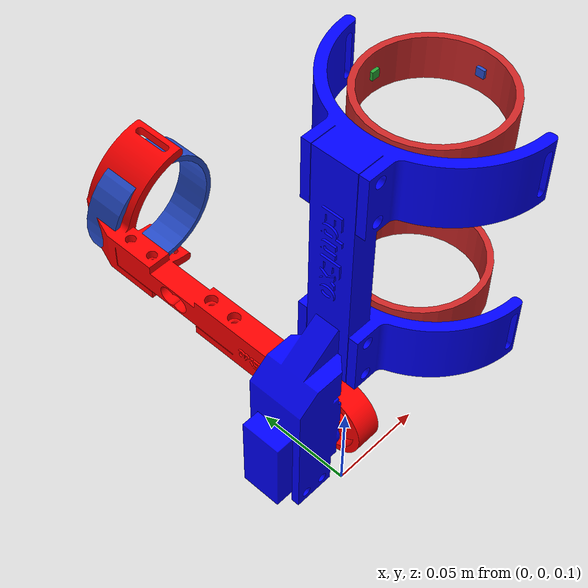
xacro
<?xml version="1.0"?>
<robot name="eduexo" xmlns:xacro="http://www.ros.org/wiki/xacro">

  <!-- Import all Gazebo-customization elements, including Gazebo colors -->
  <xacro:include filename="$(find wearable_robot_description)/urdf/eduexo_v2.gazebo"/>
  <!-- Import Rviz colors -->
  <xacro:include filename="$(find wearable_robot_description)/urdf/materials.xacro"/>

    <link name="arm_link">
      <visual>
        <geometry>
          <mesh filename="$(find wearable_robot_description)/meshes/eduexo_base_link.dae" scale="0.001 0.001 0.001"/>
        </geometry>
        <origin rpy="0 0 -1.570796" xyz="0.0 0 0.0"/>
        <material name="blue">
          <color rgba="0 0 1 1"/>
        </material>
      </visual>
      <inertial>
        <mass value="0.1"/>
        <inertia ixx="1.0" ixy="0.0" ixz="0.0" iyy="1.0" iyz="0.0" izz="1.0"/>
      </inertial>
    </link>

    <joint name="arm_joint" type="revolute">
        <parent link="arm_link"/>
        <child link="forearm_link"/>
        <origin xyz="0 0 0.1575"/>
        <axis xyz="0 0 0" />
        <limit effort="300" velocity="0.1" lower="-4.1" upper="-1.5"/>
        <dynamics damping="50" friction="1"/>
    </joint>

    <link name="forearm_link">
        <visual>
            <geometry>
                <mesh filename="$(find wearable_robot_description)/meshes/eduexo_arm_link.dae" scale="0.001 0.001 0.001"/>
            </geometry>
            <origin rpy="0 -1.570796 -1.570796" xyz="0.0 0.0 0.0"/>
            <material name="red">
                <color rgba="1 0 0 1"/>
            </material>
        </visual>
        <inertial>
            <mass value="0.1"/>
            <inertia ixx="1.0" ixy="0.0" ixz="0.0" iyy="1.0" iyz="0.0" izz="1.0"/>
        </inertial>
    </link>

    <joint name="forearm_band_link_fix_to_forearm_link" type="fixed">
      <origin xyz="0.025 0.18 0.05" rpy="0 1.570796 0"/>
      <parent link="forearm_link"/>
      <child link="forearm_band_link"/>
    </joint>

    <link name="forearm_band_link">
      <visual>
        <geometry>
          <mesh filename="$(find wearable_robot_description)/meshes/pipe.dae" scale="0.03 0.03 0.01"/>
        </geometry>
        <origin rpy="1.570796 1.570796 0" xyz="0.05 -0.025 0.0"/>
      </visual>
      <collision>
        <geometry>
          <mesh filename="$(find wearable_robot_description)/meshes/pipe.dae" scale="0.03 0.03 0.01"/>
        </geometry>
        <origin rpy="1.570796 1.570796 0" xyz="0.05 -0.025 0.0"/>
      </collision>

      <inertial>
        <mass value="0.001"/>
        <inertia ixx="1e-2" iyy="1e-2" izz="1e-2" ixy="0" ixz="0" iyz="0"/>
      </inertial>
    </link>

    <joint name="arm_band_link_to_arm_link" type="fixed">
      <origin xyz="0.05 -0.05 0.2875" rpy="0 0 1.570796"/>
      <axis xyz="0 0 0" />
      <parent link="arm_link"/>
      <child link="arm_band_link"/>
    </joint>

    <link name="arm_band_link">
      <visual>
        <geometry>
          <mesh filename="$(find wearable_robot_description)/meshes/pipe.dae" scale="0.0295 0.0295 0.01"/>
        </geometry>
        <origin rpy="0 0 0" xyz="0.05 0.01 0.02"/>
      </visual>

      <collision>
        <geometry>
          <mesh filename="$(find wearable_robot_description)/meshes/pipe.dae" scale="0.0295 0.0295 0.01"/>
        </geometry>
        <origin rpy="0 0 0" xyz="0.05 0.01 0.02"/>
      </collision>

      <visual>
        <geometry>
          <mesh filename="$(find wearable_robot_description)/meshes/pipe.dae" scale="0.0295 0.0295 0.01"/>
        </geometry>
        <origin rpy="0 0 0" xyz="0.05 0.01 -0.07"/>
      </visual>

      <collision>
        <geometry>
          <mesh filename="$(find wearable_robot_description)/meshes/pipe.dae" scale="0.0295 0.0295 0.01"/>
        </geometry>
        <origin rpy="0 0 0" xyz="0.05 0.01 -0.07"/>
      </collision>

      <inertial>
        <mass value="0.001"/>
        <inertia ixx="1e-2" iyy="1e-2" izz="1e-2" ixy="0" ixz="0" iyz="0"/>
      </inertial>
    </link>

    <!-- band point -->
    <joint name="arm_band_point_1_to_arm_link" type="fixed">
      <origin xyz="0.05 -0.05 0.2875" rpy="0 0 1.570796"/>
      <axis xyz="0 0 0" />
      <parent link="arm_link"/>
      <child link="arm_band_point_1"/>
    </joint>

    <joint name="arm_band_point_2_to_arm_link" type="fixed">
      <origin xyz="0.05 -0.05 0.2875" rpy="0 0 1.570796"/>
      <axis xyz="0 0 0" />
      <parent link="arm_link"/>
      <child link="arm_band_point_2"/>
    </joint>

    <joint name="arm_band_point_3_to_arm_link" type="fixed">
      <origin xyz="0.05 -0.05 0.2875" rpy="0 0 1.570796"/>
      <axis xyz="0 0 0" />
      <parent link="arm_link"/>
      <child link="arm_band_point_3"/>
    </joint>

    <joint name="arm_band_point_4_to_arm_link" type="fixed">
      <origin xyz="0.05 -0.05 0.2875" rpy="0 0 1.570796"/>
      <axis xyz="0 0 0" />
      <parent link="arm_link"/>
      <child link="arm_band_point_4"/>
    </joint>

    <link name="arm_band_point_1">
      <visual>
        <geometry>
          <box size="0.004 0.004 0.004" />
        </geometry>
        <origin rpy="0 0 0" xyz="0.020 0.01 0.02"/>
      </visual>
      <collision>
        <geometry>
          <box size="0.004 0.004 0.004" />
        </geometry>
        <origin rpy="0 0 0" xyz="0.020 0.01 0.02"/>
      </collision>
    </link>

    <link name="arm_band_point_2">
      <visual>
        <geometry>
          <box size="0.004 0.004 0.004" />
        </geometry>
        <origin rpy="0 0 0" xyz="0.080 0.01 0.02"/>
      </visual>
      <collision>
        <geometry>
          <box size="0.004 0.004 0.004" />
        </geometry>
        <origin rpy="0 0 0" xyz="0.080 0.01 0.02"/>
      </collision>
    </link>

    <link name="arm_band_point_3">
      <visual>
        <geometry>
          <box size="0.004 0.004 0.004" />
        </geometry>
        <origin rpy="0 0 0" xyz="0.05 -0.020 0.02"/>
      </visual>
      <collision>
        <geometry>
          <box size="0.004 0.004 0.004" />
        </geometry>
        <origin rpy="0 0 0" xyz="0.05 -0.020 0.02"/>
      </collision>
    </link>

    <link name="arm_band_point_4">
      <visual>
        <geometry>
          <box size="0.004 0.004 0.004" />
        </geometry>
        <origin rpy="0 0 0" xyz="0.05 0.040 0.02"/>
      </visual>
      <collision>
        <geometry>
          <box size="0.004 0.004 0.004" />
        </geometry>
        <origin rpy="0 0 0" xyz="0.05 0.040 0.02"/>
      </collision>
    </link>

  <ros2_control name="GazeboSystem" type="system">
    <hardware>
      <plugin>gazebo_ros2_control/GazeboSystem</plugin>
    </hardware>
    <joint name="arm_joint">
      <command_interface name="position">
        <param name="min">1.79</param>
        <param name="max">6.28</param>
      </command_interface>
      <command_interface name="effort">
        <param name="min">-100.0</param>
        <param name="max">+100.0</param>
      </command_interface>
      <state_interface name="position">
	      <param name="initial_value">1.57079</param>
      </state_interface>
      <state_interface name="velocity"/>
      <state_interface name="effort"/>
    </joint>
  </ros2_control>

</robot>
